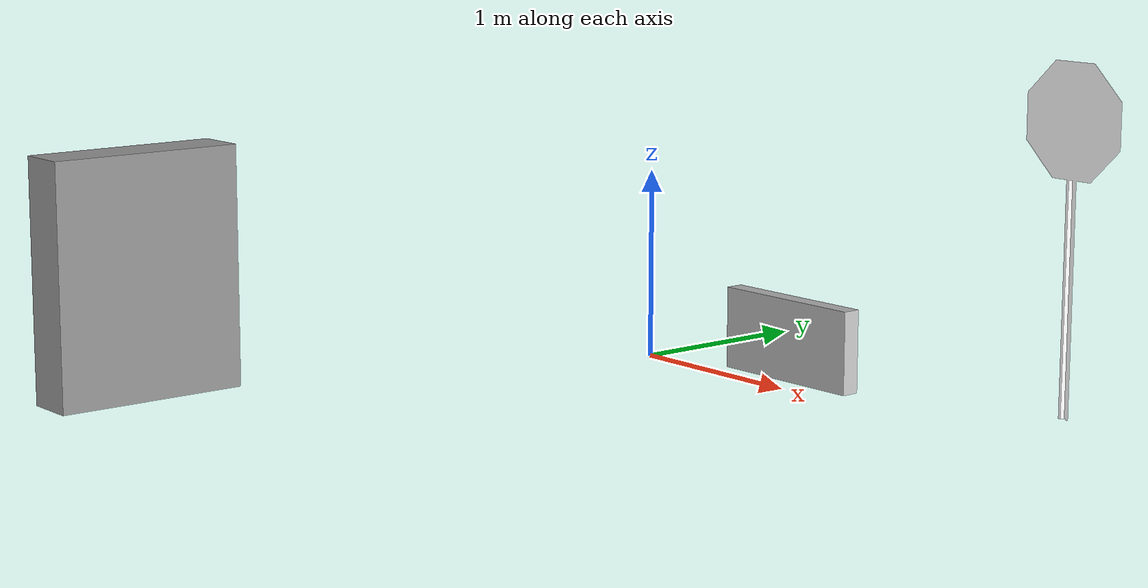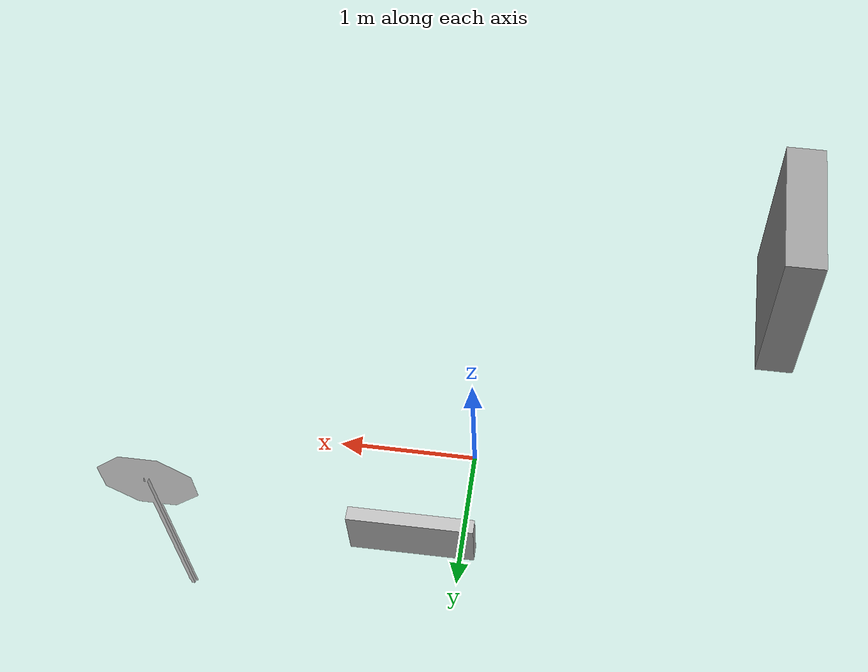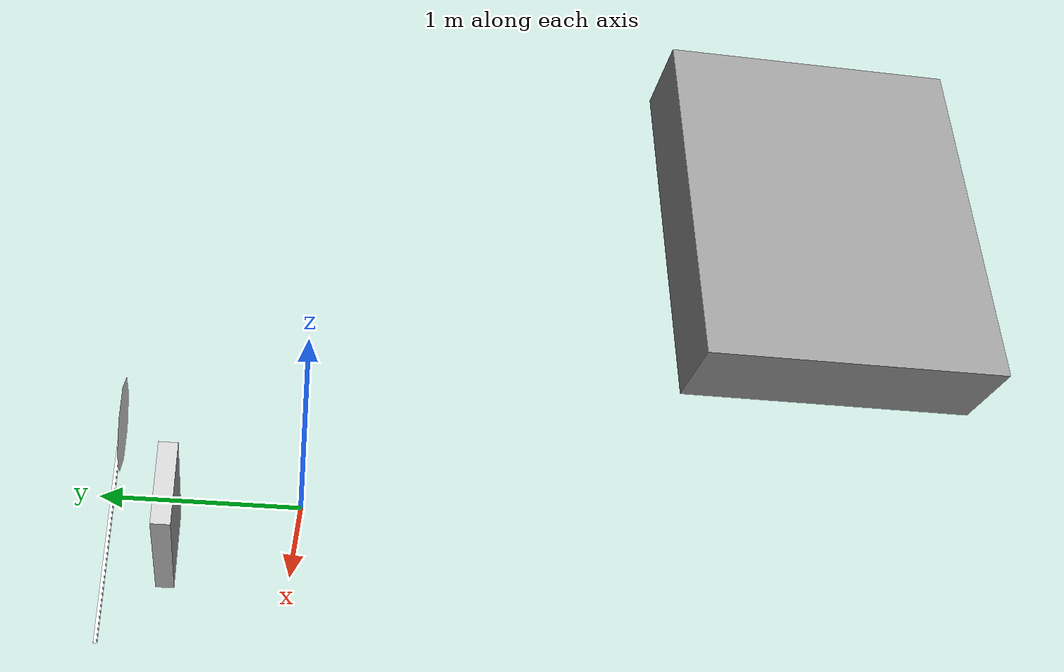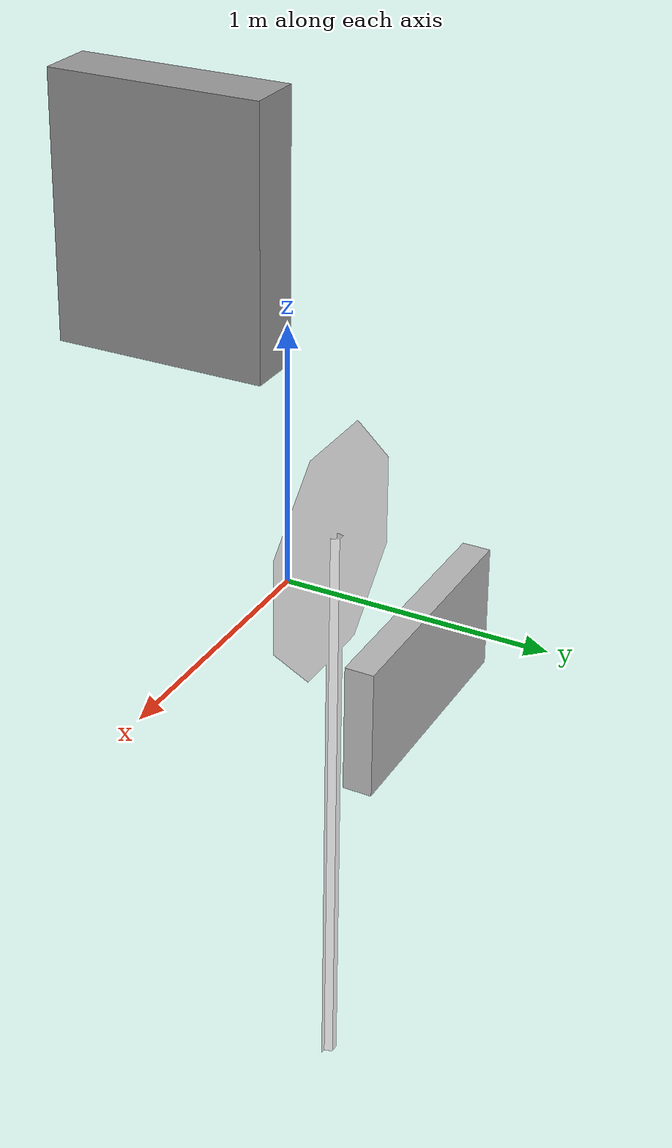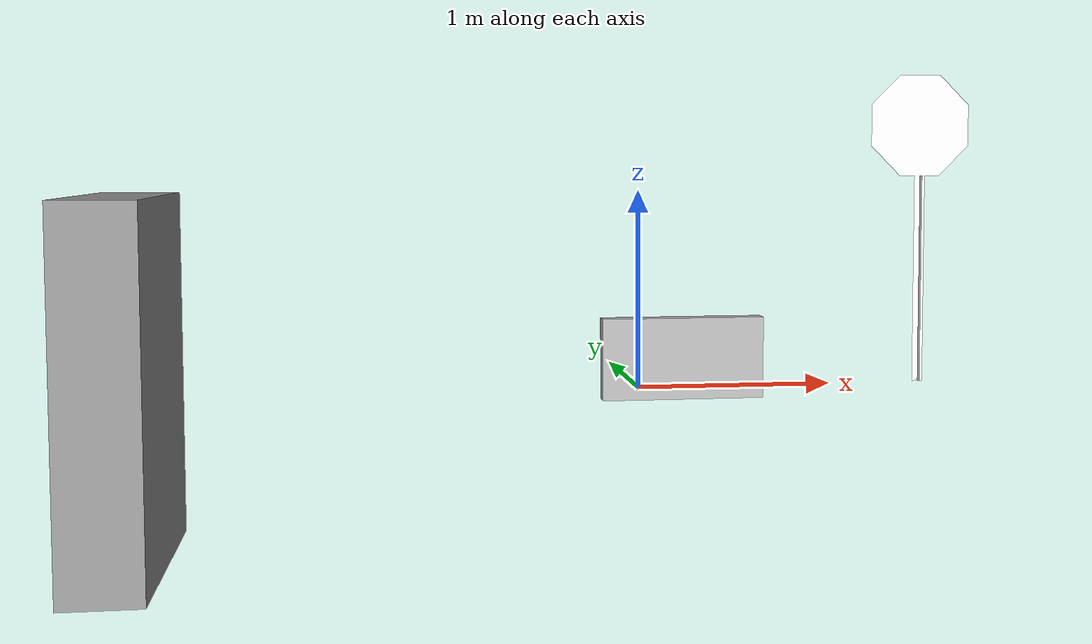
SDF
<?xml version='1.0'?>
<sdf version='1.7'>
  <model name='test_world'>
    <link name='link_0'>
      <inertial>
        <mass>0.474079</mass>
        <inertia>
          <ixx>0.126575</ixx>
          <ixy>0</ixy>
          <ixz>0</ixz>
          <iyy>0.0798547</iyy>
          <iyz>0</iyz>
          <izz>0.0539435</izz>
        </inertia>
        <pose>0 0 0 0 -0 0</pose>
      </inertial>
      <pose>-2.23854 -1.83037 0.333333 0 -0 0</pose>
      <visual name='visual'>
        <pose>0 0 0 0 -0 0</pose>
        <geometry>
          <box>
            <size>0.302345 1.12872 1.38921</size>
          </box>
        </geometry>
        <material>
          <lighting>1</lighting>
          <script>
            <uri>file://media/materials/scripts/gazebo.material</uri>
            <name>Gazebo/Grey</name>
            <shader type="pixel"/>
            <normal_map>"/home/oem/ros2_ws/src/cycloidal_arm/world/defect.jpg"</normal_map>
          </script>
          <shader type='pixel'/>
        </material>
        <transparency>0</transparency>
        <cast_shadows>1</cast_shadows>
      </visual>
      <collision name='collision'>
        <laser_retro>0</laser_retro>
        <max_contacts>10</max_contacts>
        <pose>0 0 0 0 -0 0</pose>
        <geometry>
          <box>
            <size>0.302345 1.12872 1.38921</size>
          </box>
        </geometry>
        <surface>
          <friction>
            <ode>
              <mu>1</mu>
              <mu2>1</mu2>
              <fdir1>0 0 0</fdir1>
              <slip1>0</slip1>
              <slip2>0</slip2>
            </ode>
            <torsional>
              <coefficient>1</coefficient>
              <patch_radius>0</patch_radius>
              <surface_radius>0</surface_radius>
              <use_patch_radius>1</use_patch_radius>
              <ode>
                <slip>0</slip>
              </ode>
            </torsional>
          </friction>
          <bounce>
            <restitution_coefficient>0</restitution_coefficient>
            <threshold>1e+06</threshold>
          </bounce>
          <contact>
            <collide_without_contact>0</collide_without_contact>
            <collide_without_contact_bitmask>1</collide_without_contact_bitmask>
            <collide_bitmask>1</collide_bitmask>
            <ode>
              <soft_cfm>0</soft_cfm>
              <soft_erp>0.2</soft_erp>
              <kp>1e+13</kp>
              <kd>1</kd>
              <max_vel>0.01</max_vel>
              <min_depth>0</min_depth>
            </ode>
            <bullet>
              <split_impulse>1</split_impulse>
              <split_impulse_penetration_threshold>-0.01</split_impulse_penetration_threshold>
              <soft_cfm>0</soft_cfm>
              <soft_erp>0.2</soft_erp>
              <kp>1e+13</kp>
              <kd>1</kd>
            </bullet>
          </contact>
        </surface>
      </collision>
    </link>
    <model name='Stop Sign'>
      <static>1</static>
      <link name='link'>
        <collision name='collision'>
          <geometry>
            <mesh>
              <uri>model://stop_sign/meshes/stop_sign.dae</uri>
            </mesh>
          </geometry>
        </collision>
        <visual name='visual'>
          <geometry>
            <mesh>
              <uri>model://stop_sign/meshes/stop_sign.dae</uri>
            </mesh>
          </geometry>
          <material>
            <script>
              <uri>model://stop_sign/materials/scripts</uri>
              <uri>model://stop_sign/materials/textures</uri>
              <name>StopSign/Diffuse</name>
            </script>
          </material>
        </visual>
      </link>
      <pose>1.87685 1.14214 -0.166667 0 -0 0</pose>
    </model>
    <model name='cat_block'>
      <static>1</static>
      <link name='link'>
        <collision name='collision'>
          <geometry>
            <mesh>
              <scale>1 1 1</scale>
              <uri>model://cat_block/meshes/cat_block.stl</uri>
            </mesh>
          </geometry>
          <surface>
            <friction>
              <ode>
                <mu>1.2</mu>
                <mu2>1.2</mu2>
              </ode>
            </friction>
          </surface>
        </collision>
        <visual name='visual'>
          <geometry>
            <mesh>
              <scale>1 1 1</scale>
              <uri>model://cat_block/meshes/cat_block.dae</uri>
            </mesh>
          </geometry>
        </visual>
      </link>
      <pose>0.361695 0.688228 -0.166667 0 -0 0</pose>
    </model>
    <static>0</static>
    <allow_auto_disable>1</allow_auto_disable>
  </model>
</sdf>
